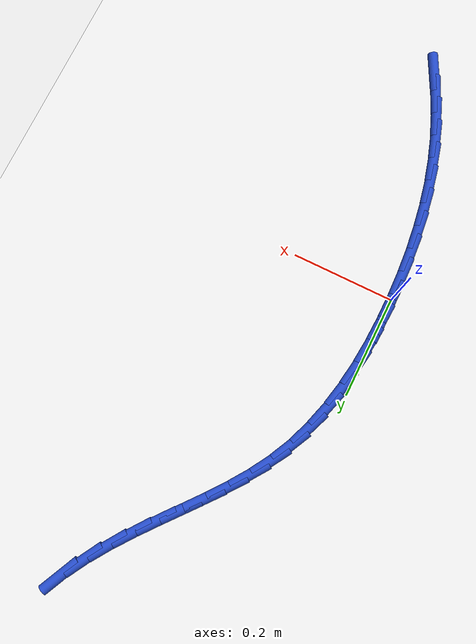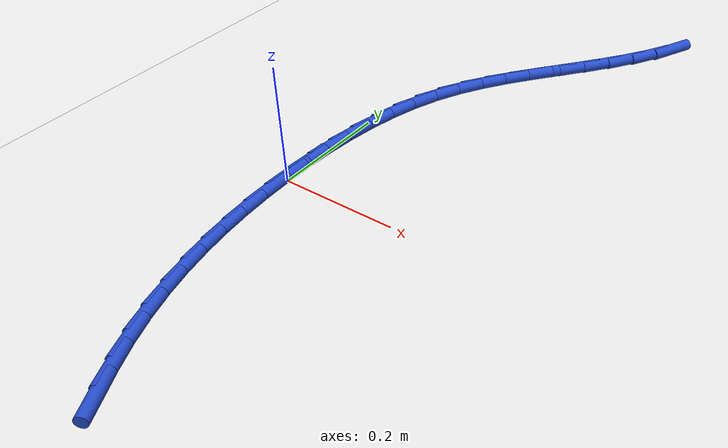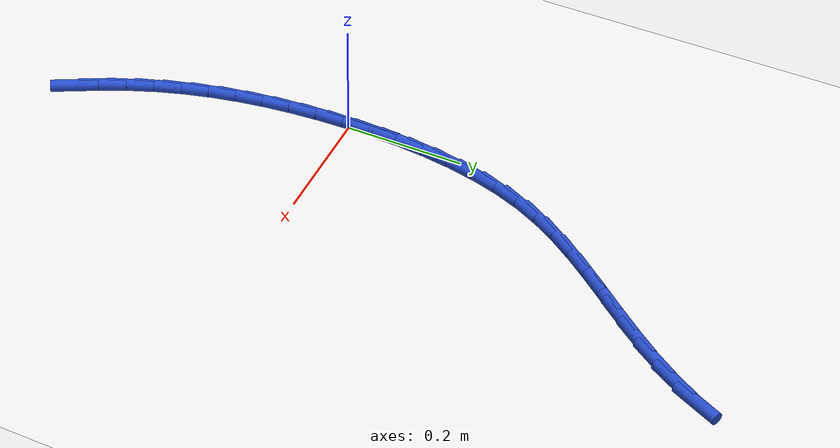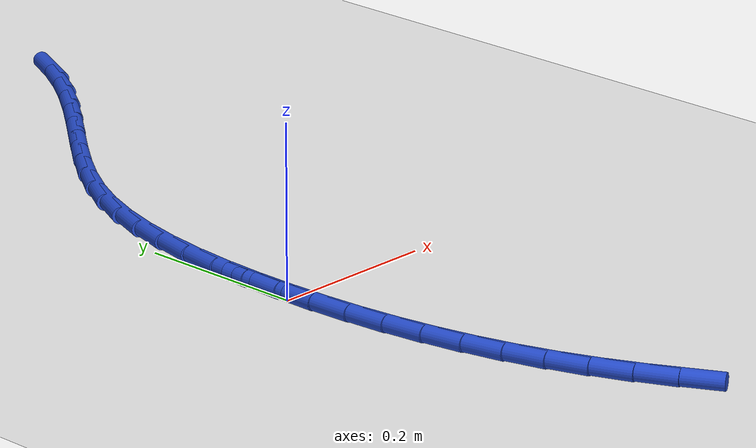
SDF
<sdf version="1.6">
 <world name="default">
  <model name="ground_plane">
   <static>1</static>
   <link name="link">
    <collision name="collision">
     <geometry><plane><normal>0 0 1</normal><size>100 100</size></plane></geometry>
     <surface><friction><ode><mu>100</mu><mu2>50</mu2></ode></friction></surface>
    </collision>
    <visual name="visual">
     <cast_shadows>0</cast_shadows>
     <geometry><plane><normal>0 0 1</normal><size>100 100</size></plane></geometry>
     <material>
      <script><uri>file://media/materials/scripts/gazebo.material</uri><name>Gazebo/WhiteGlow</name></script>
     </material>
    </visual>
   </link>
  </model>
  <model name="line">
   <link name="link_0">
    <pose>0.0 1.3877787807814457e-17 0.01 0 1.57 1.5666232689780604</pose>
    <collision name="collision">
     <geometry><cylinder><radius>0.01</radius><length>0.08</length></cylinder></geometry>
    </collision>
    <visual name="visual">
     <material>
      <script><name>Gazebo/Blue</name><uri>file://media/materials/scripts/gazebo.material</uri></script>
     </material>
     <geometry><cylinder><radius>0.01</radius><length>0.08</length></cylinder></geometry>
    </visual>
   </link>
   <link name="link_1">
    <pose>0.0002033046258654413 0.048718099447453526 0.01 0 1.57 1.5253808544607772</pose>
    <collision name="collision">
     <geometry><cylinder><radius>0.01</radius><length>0.08</length></cylinder></geometry>
    </collision>
    <visual name="visual">
     <material>
      <script><name>Gazebo/Blue</name><uri>file://media/materials/scripts/gazebo.material</uri></script>
     </material>
     <geometry><cylinder><radius>0.01</radius><length>0.08</length></cylinder></geometry>
    </visual>
   </link>
   <link name="link_2">
    <pose>0.002415687918755517 0.09739891038097144 0.01 0 1.57 1.4777246147879786</pose>
    <collision name="collision">
     <geometry><cylinder><radius>0.01</radius><length>0.08</length></cylinder></geometry>
    </collision>
    <visual name="visual">
     <material>
      <script><name>Gazebo/Blue</name><uri>file://media/materials/scripts/gazebo.material</uri></script>
     </material>
     <geometry><cylinder><radius>0.01</radius><length>0.08</length></cylinder></geometry>
    </visual>
   </link>
   <link name="link_3">
    <pose>0.006921663336947003 0.14567305332354222 0.01 0 1.57 1.422743132023781</pose>
    <collision name="collision">
     <geometry><cylinder><radius>0.01</radius><length>0.08</length></cylinder></geometry>
    </collision>
    <visual name="visual">
     <material>
      <script><name>Gazebo/Blue</name><uri>file://media/materials/scripts/gazebo.material</uri></script>
     </material>
     <geometry><cylinder><radius>0.01</radius><length>0.08</length></cylinder></geometry>
    </visual>
   </link>
   <link name="link_4">
    <pose>0.014005744338716684 0.19317114879815447 0.01 0 1.57 1.3594145411292544</pose>
    <collision name="collision">
     <geometry><cylinder><radius>0.01</radius><length>0.08</length></cylinder></geometry>
    </collision>
    <visual name="visual">
     <material>
      <script><name>Gazebo/Blue</name><uri>file://media/materials/scripts/gazebo.material</uri></script>
     </material>
     <geometry><cylinder><radius>0.01</radius><length>0.08</length></cylinder></geometry>
    </visual>
   </link>
   <link name="link_5">
    <pose>0.023952444382341315 0.23952381732779648 0.01 0 1.57 1.2866708614399154</pose>
    <collision name="collision">
     <geometry><cylinder><radius>0.01</radius><length>0.08</length></cylinder></geometry>
    </collision>
    <visual name="visual">
     <material>
      <script><name>Gazebo/Blue</name><uri>file://media/materials/scripts/gazebo.material</uri></script>
     </material>
     <geometry><cylinder><radius>0.01</radius><length>0.08</length></cylinder></geometry>
    </visual>
   </link>
   <link name="link_6">
    <pose>0.037046276926097674 0.2843616794354568 0.01 0 1.57 1.2035244633106814</pose>
    <collision name="collision">
     <geometry><cylinder><radius>0.01</radius><length>0.08</length></cylinder></geometry>
    </collision>
    <visual name="visual">
     <material>
      <script><name>Gazebo/Blue</name><uri>file://media/materials/scripts/gazebo.material</uri></script>
     </material>
     <geometry><cylinder><radius>0.01</radius><length>0.08</length></cylinder></geometry>
    </visual>
   </link>
   <link name="link_7">
    <pose>0.05357175542826255 0.32731535564412395 0.01 0 1.57 1.1105705860418358</pose>
    <collision name="collision">
     <geometry><cylinder><radius>0.01</radius><length>0.08</length></cylinder></geometry>
    </collision>
    <visual name="visual">
     <material>
      <script><name>Gazebo/Blue</name><uri>file://media/materials/scripts/gazebo.material</uri></script>
     </material>
     <geometry><cylinder><radius>0.01</radius><length>0.08</length></cylinder></geometry>
    </visual>
   </link>
   <link name="link_8">
    <pose>0.07376855706244696 0.3680568954274267 0.01 0 1.57 1.0244880160469267</pose>
    <collision name="collision">
     <geometry><cylinder><radius>0.01</radius><length>0.08</length></cylinder></geometry>
    </collision>
    <visual name="visual">
     <material>
      <script><name>Gazebo/Blue</name><uri>file://media/materials/scripts/gazebo.material</uri></script>
     </material>
     <geometry><cylinder><radius>0.01</radius><length>0.08</length></cylinder></geometry>
    </visual>
   </link>
   <link name="link_9">
    <pose>0.09731298461001398 0.4067789090071125 0.01 0 1.57 0.9581176899792797</pose>
    <collision name="collision">
     <geometry><cylinder><radius>0.01</radius><length>0.08</length></cylinder></geometry>
    </collision>
    <visual name="visual">
     <material>
      <script><name>Gazebo/Blue</name><uri>file://media/materials/scripts/gazebo.material</uri></script>
     </material>
     <geometry><cylinder><radius>0.01</radius><length>0.08</length></cylinder></geometry>
    </visual>
   </link>
   <link name="link_10">
    <pose>0.12349680193107898 0.4440293224859489 0.01 0 1.57 0.9123637238996702</pose>
    <collision name="collision">
     <geometry><cylinder><radius>0.01</radius><length>0.08</length></cylinder></geometry>
    </collision>
    <visual name="visual">
     <material>
      <script><name>Gazebo/Blue</name><uri>file://media/materials/scripts/gazebo.material</uri></script>
     </material>
     <geometry><cylinder><radius>0.01</radius><length>0.08</length></cylinder></geometry>
    </visual>
   </link>
   <link name="link_11">
    <pose>0.15160434706261722 0.48036292346431836 0.01 0 1.57 0.8869961694170203</pose>
    <collision name="collision">
     <geometry><cylinder><radius>0.01</radius><length>0.08</length></cylinder></geometry>
    </collision>
    <visual name="visual">
     <material>
      <script><name>Gazebo/Blue</name><uri>file://media/materials/scripts/gazebo.material</uri></script>
     </material>
     <geometry><cylinder><radius>0.01</radius><length>0.08</length></cylinder></geometry>
    </visual>
   </link>
   <link name="link_12">
    <pose>0.1809199580416041 0.5163344995426039 0.01 0 1.57 0.8814499763341609</pose>
    <collision name="collision">
     <geometry><cylinder><radius>0.01</radius><length>0.08</length></cylinder></geometry>
    </collision>
    <visual name="visual">
     <material>
      <script><name>Gazebo/Blue</name><uri>file://media/materials/scripts/gazebo.material</uri></script>
     </material>
     <geometry><cylinder><radius>0.01</radius><length>0.08</length></cylinder></geometry>
    </visual>
   </link>
   <link name="link_13">
    <pose>0.21072797290501513 0.5524988383211887 0.01 0 1.57 0.8951434369867356</pose>
    <collision name="collision">
     <geometry><cylinder><radius>0.01</radius><length>0.08</length></cylinder></geometry>
    </collision>
    <visual name="visual">
     <material>
      <script><name>Gazebo/Blue</name><uri>file://media/materials/scripts/gazebo.material</uri></script>
     </material>
     <geometry><cylinder><radius>0.01</radius><length>0.08</length></cylinder></geometry>
    </visual>
   </link>
   <link name="link_14">
    <pose>0.2403127296898256 0.5894107274004555 0.01 0 1.57 0.9275436910081944</pose>
    <collision name="collision">
     <geometry><cylinder><radius>0.01</radius><length>0.08</length></cylinder></geometry>
    </collision>
    <visual name="visual">
     <material>
      <script><name>Gazebo/Blue</name><uri>file://media/materials/scripts/gazebo.material</uri></script>
     </material>
     <geometry><cylinder><radius>0.01</radius><length>0.08</length></cylinder></geometry>
    </visual>
   </link>
   <link name="link_15">
    <pose>0.26895856643301086 0.6276249543807872 0.01 0 1.57 0.9780229464078937</pose>
    <collision name="collision">
     <geometry><cylinder><radius>0.01</radius><length>0.08</length></cylinder></geometry>
    </collision>
    <visual name="visual">
     <material>
      <script><name>Gazebo/Blue</name><uri>file://media/materials/scripts/gazebo.material</uri></script>
     </material>
     <geometry><cylinder><radius>0.01</radius><length>0.08</length></cylinder></geometry>
    </visual>
   </link>
   <link name="link_16">
    <pose>0.2959498211715464 0.6676963068625665 0.01 0 1.57 1.0455522459680935</pose>
    <collision name="collision">
     <geometry><cylinder><radius>0.01</radius><length>0.08</length></cylinder></geometry>
    </collision>
    <visual name="visual">
     <material>
      <script><name>Gazebo/Blue</name><uri>file://media/materials/scripts/gazebo.material</uri></script>
     </material>
     <geometry><cylinder><radius>0.01</radius><length>0.08</length></cylinder></geometry>
    </visual>
   </link>
   <link name="link_17">
    <pose>0.32057083194240743 0.7101795724461764 0.01 0 1.57 1.1283111720617789</pose>
    <collision name="collision">
     <geometry><cylinder><radius>0.01</radius><length>0.08</length></cylinder></geometry>
    </collision>
    <visual name="visual">
     <material>
      <script><name>Gazebo/Blue</name><uri>file://media/materials/scripts/gazebo.material</uri></script>
     </material>
     <geometry><cylinder><radius>0.01</radius><length>0.08</length></cylinder></geometry>
    </visual>
   </link>
   <link name="link_170">
    <pose>0.11315876889652446 -0.4538620082308069 0.01 0 1.57 -1.0883260123076364</pose>
    <collision name="collision">
     <geometry><cylinder><radius>0.01</radius><length>0.08</length></cylinder></geometry>
    </collision>
    <visual name="visual">
     <material>
      <script><name>Gazebo/Blue</name><uri>file://media/materials/scripts/gazebo.material</uri></script>
     </material>
     <geometry><cylinder><radius>0.01</radius><length>0.08</length></cylinder></geometry>
    </visual>
   </link>
   <link name="link_171">
    <pose>0.09138467195094259 -0.41228893060911076 0.01 0 1.57 -1.1365387976302241</pose>
    <collision name="collision">
     <geometry><cylinder><radius>0.01</radius><length>0.08</length></cylinder></geometry>
    </collision>
    <visual name="visual">
     <material>
      <script><name>Gazebo/Blue</name><uri>file://media/materials/scripts/gazebo.material</uri></script>
     </material>
     <geometry><cylinder><radius>0.01</radius><length>0.08</length></cylinder></geometry>
    </visual>
   </link>
   <link name="link_172">
    <pose>0.07172148858440212 -0.3698916586909028 0.01 0 1.57 -1.1927759484807052</pose>
    <collision name="collision">
     <geometry><cylinder><radius>0.01</radius><length>0.08</length></cylinder></geometry>
    </collision>
    <visual name="visual">
     <material>
      <script><name>Gazebo/Blue</name><uri>file://media/materials/scripts/gazebo.material</uri></script>
     </material>
     <geometry><cylinder><radius>0.01</radius><length>0.08</length></cylinder></geometry>
    </visual>
   </link>
   <link name="link_173">
    <pose>0.054502147134641805 -0.3265310108650487 0.01 0 1.57 -1.252484817461258</pose>
    <collision name="collision">
     <geometry><cylinder><radius>0.01</radius><length>0.08</length></cylinder></geometry>
    </collision>
    <visual name="visual">
     <material>
      <script><name>Gazebo/Blue</name><uri>file://media/materials/scripts/gazebo.material</uri></script>
     </material>
     <geometry><cylinder><radius>0.01</radius><length>0.08</length></cylinder></geometry>
    </visual>
   </link>
   <link name="link_174">
    <pose>0.0398811166069011 -0.2821598516478585 0.01 0 1.57 -1.3091364604958207</pose>
    <collision name="collision">
     <geometry><cylinder><radius>0.01</radius><length>0.08</length></cylinder></geometry>
    </collision>
    <visual name="visual">
     <material>
      <script><name>Gazebo/Blue</name><uri>file://media/materials/scripts/gazebo.material</uri></script>
     </material>
     <geometry><cylinder><radius>0.01</radius><length>0.08</length></cylinder></geometry>
    </visual>
   </link>
   <link name="link_175">
    <pose>0.027751411541260228 -0.23686589908604594 0.01 0 1.57 -1.362115691442539</pose>
    <collision name="collision">
     <geometry><cylinder><radius>0.01</radius><length>0.08</length></cylinder></geometry>
    </collision>
    <visual name="visual">
     <material>
      <script><name>Gazebo/Blue</name><uri>file://media/materials/scripts/gazebo.material</uri></script>
     </material>
     <geometry><cylinder><radius>0.01</radius><length>0.08</length></cylinder></geometry>
    </visual>
   </link>
   <link name="link_176">
    <pose>0.017985238562160326 -0.1907476035765343 0.01 0 1.57 -1.4114050632404278</pose>
    <collision name="collision">
     <geometry><cylinder><radius>0.01</radius><length>0.08</length></cylinder></geometry>
    </collision>
    <visual name="visual">
     <material>
      <script><name>Gazebo/Blue</name><uri>file://media/materials/scripts/gazebo.material</uri></script>
     </material>
     <geometry><cylinder><radius>0.01</radius><length>0.08</length></cylinder></geometry>
    </visual>
   </link>
   <link name="link_177">
    <pose>0.01045480429404315 -0.1439034155162501 0.01 0 1.57 -1.4570633788173886</pose>
    <collision name="collision">
     <geometry><cylinder><radius>0.01</radius><length>0.08</length></cylinder></geometry>
    </collision>
    <visual name="visual">
     <material>
      <script><name>Gazebo/Blue</name><uri>file://media/materials/scripts/gazebo.material</uri></script>
     </material>
     <geometry><cylinder><radius>0.01</radius><length>0.08</length></cylinder></geometry>
    </visual>
   </link>
   <link name="link_178">
    <pose>0.005032315361349812 -0.09643178530211663 0.01 0 1.57 -1.499204465908805</pose>
    <collision name="collision">
     <geometry><cylinder><radius>0.01</radius><length>0.08</length></cylinder></geometry>
    </collision>
    <visual name="visual">
     <material>
      <script><name>Gazebo/Blue</name><uri>file://media/materials/scripts/gazebo.material</uri></script>
     </material>
     <geometry><cylinder><radius>0.01</radius><length>0.08</length></cylinder></geometry>
    </visual>
   </link>
   <link name="link_179">
    <pose>0.0015899783885216469 -0.04843116333105839 0.01 0 1.57 -1.5379784585183613</pose>
    <collision name="collision">
     <geometry><cylinder><radius>0.01</radius><length>0.08</length></cylinder></geometry>
    </collision>
    <visual name="visual">
     <material>
      <script><name>Gazebo/Blue</name><uri>file://media/materials/scripts/gazebo.material</uri></script>
     </material>
     <geometry><cylinder><radius>0.01</radius><length>0.08</length></cylinder></geometry>
    </visual>
   </link>
   <link name="link_180">
    <pose>-2.6020852139652106e-18 1.942890293094024e-16 0.01 0 1.57 1.5680363289146917</pose>
    <collision name="collision">
     <geometry><cylinder><radius>0.01</radius><length>0.08</length></cylinder></geometry>
    </collision>
    <visual name="visual">
     <material>
      <script><name>Gazebo/Blue</name><uri>file://media/materials/scripts/gazebo.material</uri></script>
     </material>
     <geometry><cylinder><radius>0.01</radius><length>0.08</length></cylinder></geometry>
    </visual>
   </link>
   <link name="link_181">
    <pose>0.0001345868202262011 0.04876325429413474 0.01 0 1.57 1.568036328914692</pose>
    <collision name="collision">
     <geometry><cylinder><radius>0.01</radius><length>0.08</length></cylinder></geometry>
    </collision>
    <visual name="visual">
     <material>
      <script><name>Gazebo/Blue</name><uri>file://media/materials/scripts/gazebo.material</uri></script>
     </material>
     <geometry><cylinder><radius>0.01</radius><length>0.08</length></cylinder></geometry>
    </visual>
   </link>
  </model>
 </world>
</sdf>
